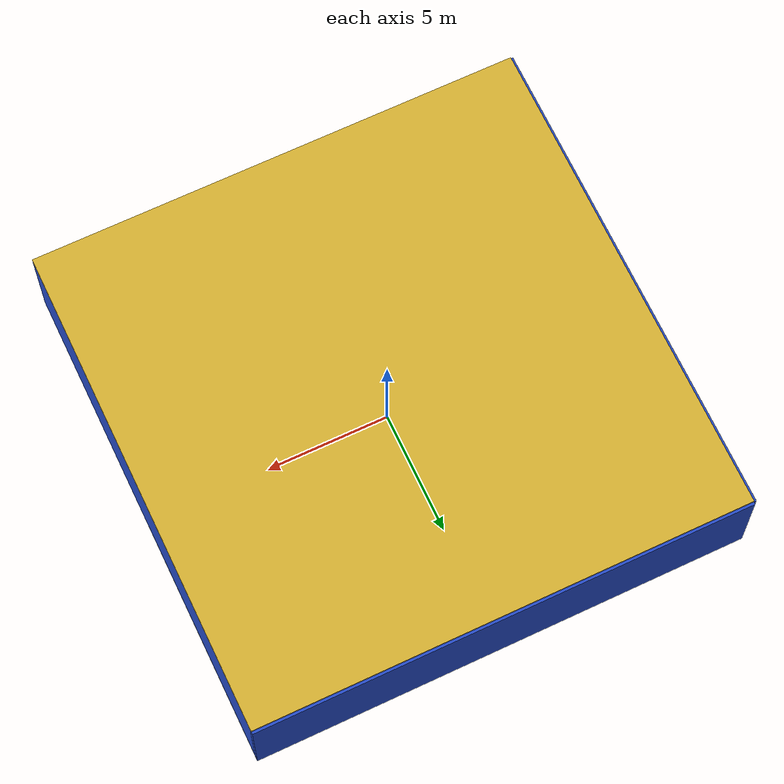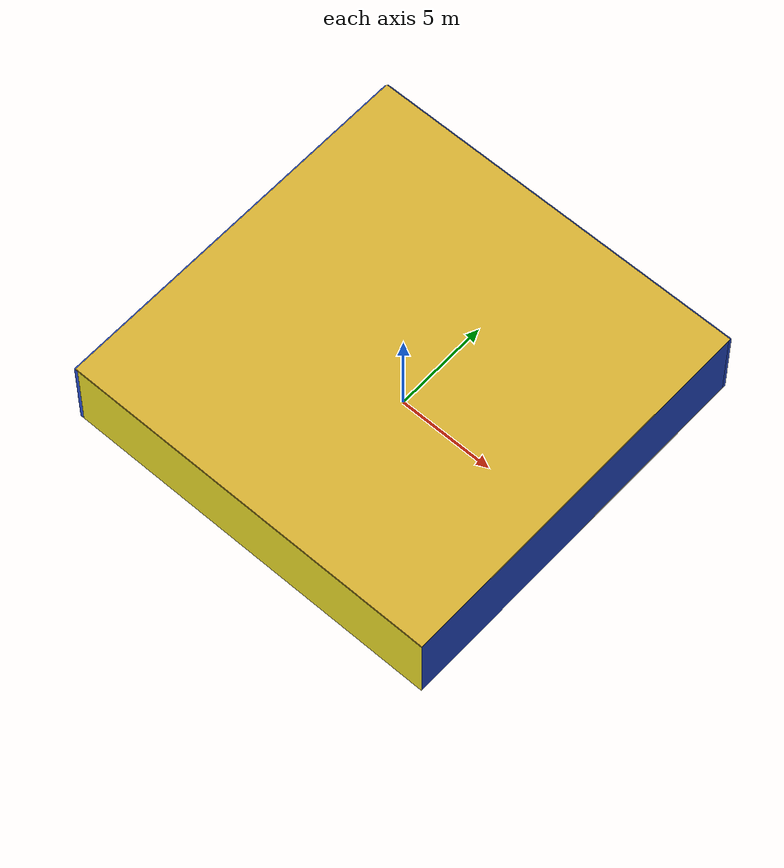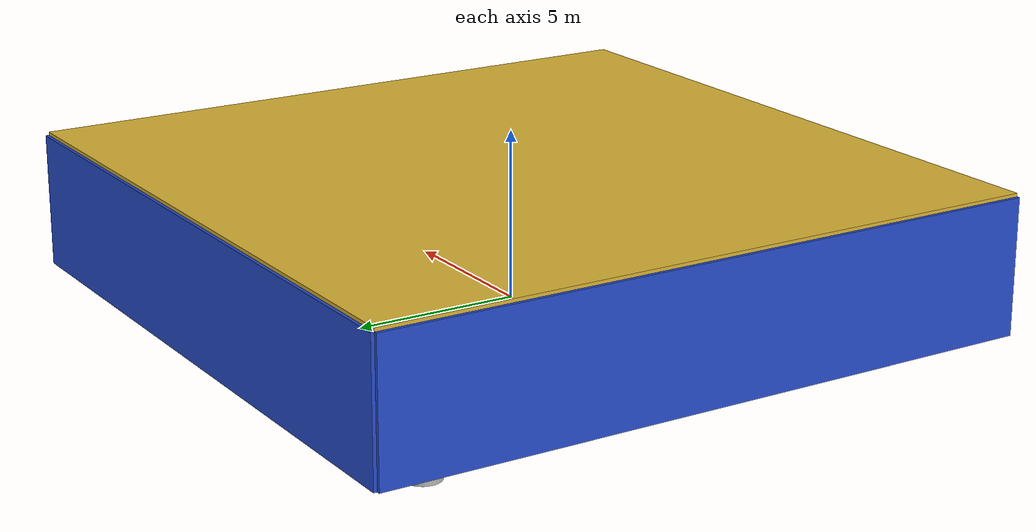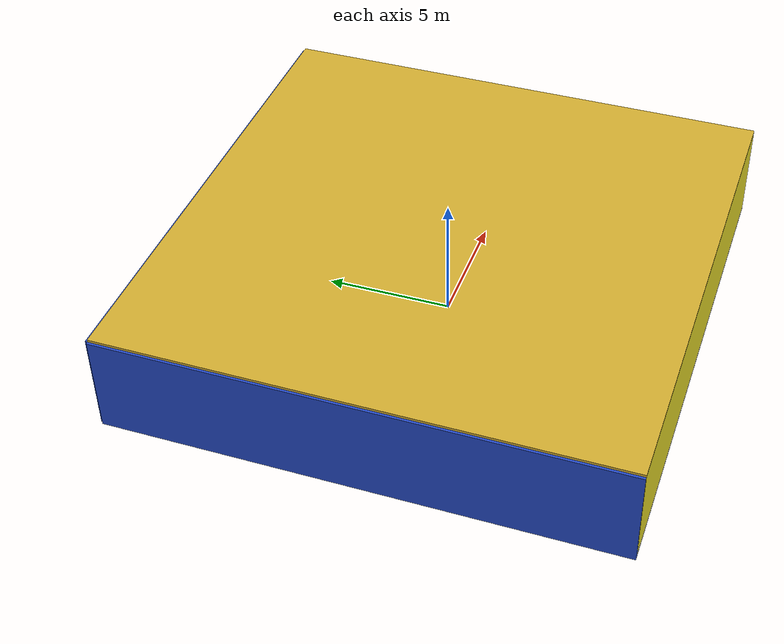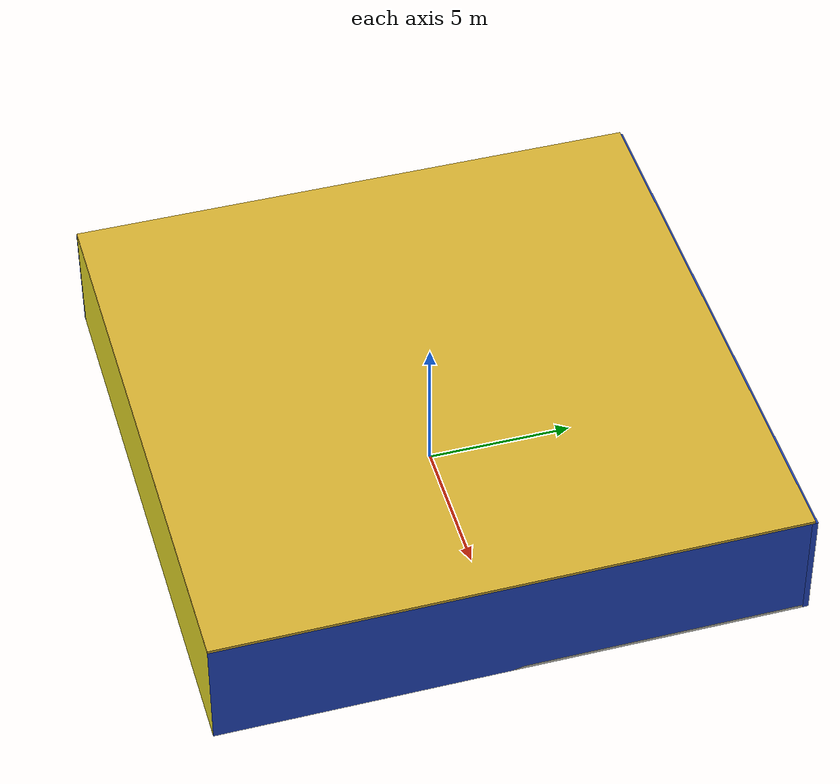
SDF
<sdf version="1.4">
 <world name="default">
  <physics type="ode">
   <max_step_size>0.001</max_step_size>
   <real_time_factor>1</real_time_factor>
   <real_time_update_rate>1000</real_time_update_rate>
   <gravity>0 0 -9.8</gravity>
  </physics>
  <scene><ambient>0.4 0.4 0.4 1</ambient><background>0.7 0.7 0.7 1</background><shadows>1</shadows></scene>
  <model name="Surrounding">
   <static>1</static>
   <link name="Ceiling">
    <collision name="Ceiling_Collision"><geometry><box><size>20 20 0.1</size></box></geometry></collision>
    <visual name="Ceiling_Visual">
     <geometry><box><size>20 20 0.1</size></box></geometry>
     <material>
      <script><uri>file://media/materials/scripts/gazebo.material</uri><name>Gazebo/Gold</name></script>
     </material>
    </visual>
    <pose>0 0 4.05 0 0 0</pose>
   </link>
   <link name="Wall_South">
    <collision name="Wall_South_Collision">
     <geometry><box><size>20 0 4</size></box></geometry>
     <pose>0 0 2 0 -0 0</pose>
    </collision>
    <visual name="Wall_South_Visual">
     <pose>0 0 2 0 -0 0</pose>
     <geometry><box><size>20 0 4</size></box></geometry>
     <material>
      <script><uri>file://media/materials/scripts/gazebo.material</uri><name>Gazebo/YellowGlow</name></script>
     </material>
    </visual>
    <velocity_decay><linear>0</linear><angular>0</angular></velocity_decay>
    <pose>0 -10 0 0 -0 0</pose>
   </link>
   <link name="Wall_East">
    <collision name="Wall_21_Collision">
     <geometry><box><size>20 0 4</size></box></geometry>
     <pose>0 0 2 0 -0 0</pose>
    </collision>
    <visual name="Wall_21_Visual">
     <pose>0 0 2 0 -0 0</pose>
     <geometry><box><size>20 0 4</size></box></geometry>
     <material>
      <script><uri>file://media/materials/scripts/gazebo.material</uri><name>Gazebo/BlueGlow</name></script>
     </material>
    </visual>
    <velocity_decay><linear>0</linear><angular>0</angular></velocity_decay>
    <pose>10 0 0 0 -0 1.5708</pose>
   </link>
   <link name="Wall_North">
    <collision name="Wall_22_Collision">
     <geometry><box><size>20 0.2 4</size></box></geometry>
     <pose>0 0 2 0 -0 0</pose>
    </collision>
    <visual name="Wall_22_Visual">
     <pose>0 0 2 0 -0 0</pose>
     <geometry><box><size>20 0.2 4</size></box></geometry>
     <material>
      <script><uri>file://media/materials/scripts/gazebo.material</uri><name>Gazebo/Blue</name></script>
     </material>
    </visual>
    <velocity_decay><linear>0</linear><angular>0</angular></velocity_decay>
    <pose>0 10 0 0 -0 0</pose>
   </link>
   <link name="Wall_West">
    <collision name="Wall_23_Collision">
     <geometry><box><size>20 0.2 4</size></box></geometry>
     <pose>0 0 2 0 -0 0</pose>
    </collision>
    <visual name="Wall_23_Visual">
     <pose>0 0 2 0 -0 0</pose>
     <geometry><box><size>20 0.2 4</size></box></geometry>
     <material>
      <script><uri>file://media/materials/scripts/gazebo.material</uri><name>Gazebo/BlueGlow</name></script>
     </material>
    </visual>
    <velocity_decay><linear>0</linear><angular>0</angular></velocity_decay>
    <pose>-10 0 0 0 0 -1.5708</pose>
   </link>
   <link name="Ground_link">
    <collision name="collision">
     <pose>0 0 .05 0 -0 0</pose>
     <geometry><box><size>20 20 0.1</size></box></geometry>
    </collision>
    <visual name="visual">
     <pose>0 0 .05 0 -0 0</pose>
     <geometry><box><size>20 20 0.1</size></box></geometry>
     <material>
      <script><uri>file://media/materials/scripts/gazebo.material</uri><name>Gazebo/PaintedWall</name></script>
     </material>
    </visual>
   </link>
   <static>1</static>
  </model>
  <spherical_coordinates>
   <surface_model>EARTH_WGS84</surface_model>
   <latitude_deg>0</latitude_deg>
   <longitude_deg>0</longitude_deg>
   <elevation>0</elevation>
   <heading_deg>0</heading_deg>
  </spherical_coordinates>
  <light name="lightball_0" type="diffuse">
   <diffuse>0.8 0.8 0.8 1</diffuse>
   <specular>0.2 0.2 0.2 1</specular>
   <attenuation>
    <range>100</range>
    <constant>0.7</constant>
    <linear>0.01</linear>
    <quadratic>0.001</quadratic>
   </attenuation>
   <direction>-0.5 0.1 -0.9</direction>
   <pose>2.70264790607 9.51485504829 0.994703129817 0 0 0</pose>
  </light>
  <light name="lightball_1" type="diffuse">
   <diffuse>0.8 0.8 0.8 1</diffuse>
   <specular>0.2 0.2 0.2 1</specular>
   <attenuation>
    <range>100</range>
    <constant>0.7</constant>
    <linear>0.01</linear>
    <quadratic>0.001</quadratic>
   </attenuation>
   <direction>-0.5 0.1 -0.9</direction>
   <pose>-3.220304867 9.13447244274 2.17900891843 0 0 0</pose>
  </light>
  <light name="lightball_2" type="diffuse">
   <diffuse>0.8 0.8 0.8 1</diffuse>
   <specular>0.2 0.2 0.2 1</specular>
   <attenuation>
    <range>100</range>
    <constant>0.7</constant>
    <linear>0.01</linear>
    <quadratic>0.001</quadratic>
   </attenuation>
   <direction>-0.5 0.1 -0.9</direction>
   <pose>-9.33310455203 -0.268937735536 3.21967978874 0 0 0</pose>
  </light>
  <light name="lightball_3" type="diffuse">
   <diffuse>0.8 0.8 0.8 1</diffuse>
   <specular>0.2 0.2 0.2 1</specular>
   <attenuation>
    <range>100</range>
    <constant>0.7</constant>
    <linear>0.01</linear>
    <quadratic>0.001</quadratic>
   </attenuation>
   <direction>-0.5 0.1 -0.9</direction>
   <pose>0.844000487178 0.96278916668 1.03039490941 0 0 0</pose>
  </light>
  <light name="lightball_4" type="diffuse">
   <diffuse>0.8 0.8 0.8 1</diffuse>
   <specular>0.2 0.2 0.2 1</specular>
   <attenuation>
    <range>100</range>
    <constant>0.7</constant>
    <linear>0.01</linear>
    <quadratic>0.001</quadratic>
   </attenuation>
   <direction>-0.5 0.1 -0.9</direction>
   <pose>5.92724283718 -9.52744247057 1.63654835631 0 0 0</pose>
  </light>
  <light name="lightball_5" type="diffuse">
   <diffuse>0.8 0.8 0.8 1</diffuse>
   <specular>0.2 0.2 0.2 1</specular>
   <attenuation>
    <range>100</range>
    <constant>0.7</constant>
    <linear>0.01</linear>
    <quadratic>0.001</quadratic>
   </attenuation>
   <direction>-0.5 0.1 -0.9</direction>
   <pose>8.1670160642 -3.83062352707 3.06692477403 0 0 0</pose>
  </light>
  <light name="lightball_6" type="diffuse">
   <diffuse>0.8 0.8 0.8 1</diffuse>
   <specular>0.2 0.2 0.2 1</specular>
   <attenuation>
    <range>100</range>
    <constant>0.7</constant>
    <linear>0.01</linear>
    <quadratic>0.001</quadratic>
   </attenuation>
   <direction>-0.5 0.1 -0.9</direction>
   <pose>4.20076706292 4.47449594182 0.678966008051 0 0 0</pose>
  </light>
  <light name="lightball_7" type="diffuse">
   <diffuse>0.8 0.8 0.8 1</diffuse>
   <specular>0.2 0.2 0.2 1</specular>
   <attenuation>
    <range>100</range>
    <constant>0.7</constant>
    <linear>0.01</linear>
    <quadratic>0.001</quadratic>
   </attenuation>
   <direction>-0.5 0.1 -0.9</direction>
   <pose>8.25447508694 9.18864910112 1.53161457979 0 0 0</pose>
  </light>
  <light name="lightball_8" type="diffuse">
   <diffuse>0.8 0.8 0.8 1</diffuse>
   <specular>0.2 0.2 0.2 1</specular>
   <attenuation>
    <range>100</range>
    <constant>0.7</constant>
    <linear>0.01</linear>
    <quadratic>0.001</quadratic>
   </attenuation>
   <direction>-0.5 0.1 -0.9</direction>
   <pose>7.73197974726 2.3645044338 1.97961484905 0 0 0</pose>
  </light>
  <include>
   <uri>model://textured_shapes</uri>
   <pose>-8.05776485294 6.87418665848 0 0 0 0.591097141407</pose>
  </include>
  <include>
   <uri>model://construction_cone</uri>
   <pose>-5.06618303339 -8.16202519047 0 0 0 1.27108289983</pose>
  </include>
  <include><uri>model://cabinet</uri><pose>-4.21381816656 -3.70532026828 0 0 0 2.98710305909</pose></include>
  <include><uri>model://cabinet</uri><pose>-5.18317167707 8.19873425511 0 0 0 2.3822801643</pose></include>
  <include>
   <uri>model://robocup_3Dsim_goal</uri>
   <pose>-1.71354886863 1.64396076583 0 0 0 0.290219754641</pose>
  </include>
  <include><uri>model://cabinet</uri><pose>1.95528161081 7.91912720919 0 0 0 1.83063400515</pose></include>
  <include><uri>model://table</uri><pose>4.39814557157 -1.54878349873 0 0 0 0.835149726529</pose></include>
 </world>
</sdf>

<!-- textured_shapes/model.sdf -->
<sdf version="1.6">
  <model name="textured_shapes">
    <pose>0 0 0.5 0 0 0</pose>
    <link name="box">
      <pose>0 -1.5 0 0 0 0</pose>
      <collision name="collision">
        <geometry>
          <box>
            <size>1 1 1</size>
          </box>
        </geometry>
      </collision>
      <visual name="visual">
        <geometry>
          <box>
            <size>1 1 1</size>
          </box>
        </geometry>
        <material>
          <script>
            <uri>model://../model_source/models/textured_shapes/materials/scripts</uri>
            <uri>model://../model_source/models/textured_shapes/materials/textures</uri>
            <name>TexturedShape/Squares</name>
          </script>
        </material>
      </visual>
    </link>
    <link name="sphere">
      <collision name="collision">
        <geometry>
          <sphere>
            <radius>0.5</radius>
          </sphere>
        </geometry>
      </collision>
      <visual name="visual">
        <geometry>
          <sphere>
            <radius>0.5</radius>
          </sphere>
        </geometry>
        <material>
          <script>
            <uri>model://../model_source/models/textured_shapes/materials/scripts</uri>
            <uri>model://../model_source/models/textured_shapes/materials/textures</uri>
            <name>TexturedShape/Squares</name>
          </script>
        </material>
      </visual>
    </link>
    <link name="cylinder">
      <pose>0 1.5 0 0 0 0</pose>
      <collision name="collision">
        <geometry>
          <cylinder>
            <radius>0.5</radius>
            <length>1</length>
          </cylinder>
        </geometry>
      </collision>
      <visual name="visual">
        <geometry>
          <cylinder>
            <radius>0.5</radius>
            <length>1</length>
          </cylinder>
        </geometry>
        <material>
          <script>
            <uri>model://../model_source/models/textured_shapes/materials/scripts</uri>
            <uri>model://../model_source/models/textured_shapes/materials/textures</uri>
            <name>TexturedShape/Squares</name>
          </script>
        </material>
      </visual>
    </link>
  </model>
</sdf>

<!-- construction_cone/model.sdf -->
<sdf version="1.5">
  <model name="Construction Cone">
    <link name="link">
      <collision name="collision">
        <geometry>
          <mesh>
            <scale>10 10 10</scale>
            <uri>file://isr-testbed/construction_cone/meshes/construction_cone.dae</uri>
          </mesh>
        </geometry>
      </collision>
      <visual name="visual">
        <geometry>
          <mesh>
            <scale>10 10 10</scale>
            <uri>file://isr-testbed/construction_cone/meshes/construction_cone.dae</uri>
          </mesh>
        </geometry>
      </visual>
    </link>
  </model>
</sdf>

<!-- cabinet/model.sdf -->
<sdf version="1.5">
  <model name="cabinet">
    <static>true</static>
    <link name="cabinet_bottom_plate">
      <inertial>
        <pose>0 0 -1 0 0 0</pose>
        <inertia>
          <ixx>2.050000</ixx>
          <ixy>0</ixy>
          <ixz>0</ixz>
          <iyy>2.050000</iyy>
          <iyz>0</iyz>
          <izz>2.050000</izz>
        </inertia>
        <mass>25.000000</mass>
      </inertial>
      <collision name="cabinet_bottom_plate_geom">
        <pose>0 0 0.010000 0 0 0</pose>
        <geometry>
          <box>
            <size>0.450000 0.450000 0.020000</size>
          </box>
        </geometry>
      </collision>
      <visual name="cabinet_bottom_plate_geom_visual">
        <pose>0 0 0.010000 0 0 0</pose>
        <geometry>
          <box>
            <size>0.450000 0.450000 0.020000</size>
          </box>
        </geometry>
        <material>
          <script>
            <uri>model://media/materials/scripts/gazebo.material</uri>
            <name>Gazebo/Wood</name>
          </script>
        </material>
      </visual>
      <collision name="cabinet_bottom_plate_geom_cabinet_back_plate">
        <pose>0.235000 0 0.510000 0 0 0</pose>
        <geometry>
          <box>
            <size>0.020000 0.450000 1.020000</size>
          </box>
        </geometry>
      </collision>
      <visual name="cabinet_bottom_plate_geom_cabinet_back_plate_visual">
        <pose>0.235000 0 0.510000 0 0 0</pose>
        <geometry>
          <box>
            <size>0.020000 0.450000 1.020000</size>
          </box>
        </geometry>
        <material>
          <script>
            <uri>model://media/materials/scripts/gazebo.material</uri>
            <name>Gazebo/Wood</name>
          </script>
        </material>
      </visual>
      <collision name="cabinet_bottom_plate_geom_cabinet_left_plate">
        <pose>0 0.235000 0.510000 0 0 0</pose>
        <geometry>
          <box>
            <size>0.450000 0.020000 1.020000</size>
          </box>
        </geometry>
      </collision>
      <visual name="cabinet_bottom_plate_geom_cabinet_left_plate_visual">
        <pose>0 0.235000 0.510000 0 0 0</pose>
        <geometry>
          <box>
            <size>0.450000 0.020000 1.020000</size>
          </box>
        </geometry>
        <material>
          <script>
            <uri>model://media/materials/scripts/gazebo.material</uri>
            <name>Gazebo/Wood</name>
          </script>
        </material>
      </visual>
      <collision name="cabinet_bottom_plate_geom_cabinet_middle_plate">
        <pose>0 0 0.510000 0 0 0</pose>
        <geometry>
          <box>
            <size>0.450000 0.450000 0.020000</size>
          </box>
        </geometry>
      </collision>
      <visual name="cabinet_bottom_plate_geom_cabinet_middle_plate_visual">
        <pose>0 0 0.510000 0 0 0</pose>
        <geometry>
          <box>
            <size>0.450000 0.450000 0.020000</size>
          </box>
        </geometry>
        <material>
          <script>
            <uri>model://media/materials/scripts/gazebo.material</uri>
            <name>Gazebo/Wood</name>
          </script>
        </material>
      </visual>
      <collision name="cabinet_bottom_plate_geom_cabinet_right_plate">
        <pose>0 -0.235000 0.510000 0 0 0</pose>
        <geometry>
          <box>
            <size>0.450000 0.020000 1.020000</size>
          </box>
        </geometry>
      </collision>
      <visual name="cabinet_bottom_plate_geom_cabinet_right_plate_visual">
        <pose>0 -0.235000 0.510000 0 0 0</pose>
        <geometry>
          <box>
            <size>0.450000 0.020000 1.020000</size>
          </box>
        </geometry>
        <material>
          <script>
            <uri>model://media/materials/scripts/gazebo.material</uri>
            <name>Gazebo/Wood</name>
          </script>
        </material>
      </visual>
      <collision name="cabinet_bottom_plate_geom_cabinet_top_plate">
        <pose>0 0 1.010000 0 0 0</pose>
        <geometry>
          <box>
            <size>0.450000 0.450000 0.020000</size>
          </box>
        </geometry>
      </collision>
      <visual name="cabinet_bottom_plate_geom_cabinet_top_plate_visual">
        <pose>0 0 1.010000 0 0 0</pose>
        <geometry>
          <box>
            <size>0.450000 0.450000 0.020000</size>
          </box>
        </geometry>
        <material>
          <script>
            <uri>model://media/materials/scripts/gazebo.material</uri>
            <name>Gazebo/Wood</name>
          </script>
        </material>
      </visual>
    </link>
  </model>
</sdf>

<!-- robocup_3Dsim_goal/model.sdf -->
<sdf version="1.5">
  <model name="robocup_3d_goal">
    <static>true</static>
    <link name="left_post">
      <pose>0 1.05 0.45 0 0 0</pose>
      <collision name="collision">
        <geometry>
          <cylinder>
            <radius>0.05</radius>
            <length>0.9</length>
          </cylinder>
        </geometry>
      </collision>
      <visual name="visual">
        <geometry>
          <cylinder>
            <radius>0.05</radius>
            <length>0.9</length>
          </cylinder>
        </geometry>
        <material>
          <script>
            <uri>file://media/materials/scripts/gazebo.material</uri>
            <name>Gazebo/ZincYellow</name>
          </script>
        </material>
      </visual>
    </link>
    <link name="left_support_horiz_lower">
      <pose>0.30 1.05 0.01 0 0 0</pose>
      <collision name="collision">
        <geometry>
          <box>
            <size>0.50 0.02 0.02</size>
          </box>
        </geometry>
      </collision>
      <visual name="visual">
        <geometry>
          <box>
            <size>0.50 0.02 0.02</size>
          </box>
        </geometry>
        <material>
          <script>
            <uri>file://media/materials/scripts/gazebo.material</uri>
            <name>Gazebo/White</name>
          </script>
        </material>
      </visual>
    </link>
    <link name="left_support_horiz_upper">
      <pose>0.30 1.05 0.79 0 0 0</pose>
      <collision name="collision">
        <geometry>
          <box>
            <size>0.50 0.02 0.02</size>
          </box>
        </geometry>
      </collision>
      <visual name="visual">
        <geometry>
          <box>
            <size>0.50 0.02 0.02</size>
          </box>
        </geometry>
        <material>
          <script>
            <uri>file://media/materials/scripts/gazebo.material</uri>
            <name>Gazebo/White</name>
          </script>
        </material>
      </visual>
    </link>
    <link name="left_support_vertical">
      <pose>0.56 1.05 0.4 0 1.5708 0</pose>
      <collision name="collision">
        <geometry>
          <box>
            <size>0.80 0.02 0.02</size>
          </box>
        </geometry>
      </collision>
      <visual name="visual">
        <geometry>
          <box>
            <size>0.80 0.02 0.02</size>
          </box>
        </geometry>
        <material>
          <script>
            <uri>file://media/materials/scripts/gazebo.material</uri>
            <name>Gazebo/White</name>
          </script>
        </material>
      </visual>
    </link>
    <link name="right_support_horiz_lower">
      <pose>0.30 -1.05 0.01 0 0 0</pose>
      <collision name="collision">
        <geometry>
          <box>
            <size>0.50 0.02 0.02</size>
          </box>
        </geometry>
      </collision>
      <visual name="visual">
        <geometry>
          <box>
            <size>0.50 0.02 0.02</size>
          </box>
        </geometry>
        <material>
          <script>
            <uri>file://media/materials/scripts/gazebo.material</uri>
            <name>Gazebo/White</name>
          </script>
        </material>
      </visual>
    </link>
    <link name="right_support_horiz_upper">
      <pose>0.30 -1.05 0.79 0 0 0</pose>
      <collision name="collision">
        <geometry>
          <box>
            <size>0.50 0.02 0.02</size>
          </box>
        </geometry>
      </collision>
      <visual name="visual">
        <geometry>
          <box>
            <size>0.50 0.02 0.02</size>
          </box>
        </geometry>
        <material>
          <script>
            <uri>file://media/materials/scripts/gazebo.material</uri>
            <name>Gazebo/White</name>
          </script>
        </material>
      </visual>
    </link>
    <link name="right_support_vertical">
      <pose>0.56 -1.05 0.4 0 1.5708 0</pose>
      <collision name="collision">
        <geometry>
          <box>
            <size>0.80 0.02 0.02</size>
          </box>
        </geometry>
      </collision>
      <visual name="visual">
        <geometry>
          <box>
            <size>0.80 0.02 0.02</size>
          </box>
        </geometry>
        <material>
          <script>
            <uri>file://media/materials/scripts/gazebo.material</uri>
            <name>Gazebo/White</name>
          </script>
        </material>
      </visual>
    </link>
    <link name="center_support_horiz_lower">
      <pose>0.56 0 0.01 0 1.5708 0</pose>
      <collision name="collision">
        <geometry>
          <box>
            <size>0.02 2.08 0.02</size>
          </box>
        </geometry>
      </collision>
      <visual name="visual">
        <geometry>
          <box>
            <size>0.02 2.08 0.02</size>
          </box>
        </geometry>
        <material>
          <script>
            <uri>file://media/materials/scripts/gazebo.material</uri>
            <name>Gazebo/White</name>
          </script>
        </material>
      </visual>
    </link>
    <link name="center_support_horiz_upper">
      <pose>0.56 0 0.79 0 1.5708 0</pose>
      <collision name="collision">
        <geometry>
          <box>
            <size>0.02 2.08 0.02</size>
          </box>
        </geometry>
      </collision>
      <visual name="visual">
        <geometry>
          <box>
            <size>0.02 2.08 0.02</size>
          </box>
        </geometry>
        <material>
          <script>
            <uri>file://media/materials/scripts/gazebo.material</uri>
            <name>Gazebo/White</name>
          </script>
        </material>
      </visual>
    </link>
    <link name="right_post">
      <pose>0 -1.05 0.45 0 0 0</pose>
      <collision name="collision">
        <geometry>
          <cylinder>
            <radius>0.05</radius>
            <length>0.9</length>
          </cylinder>
        </geometry>
      </collision>
      <visual name="visual">
        <geometry>
          <cylinder>
            <radius>0.05</radius>
            <length>0.9</length>
          </cylinder>
        </geometry>
        <material>
          <script>
            <uri>file://media/materials/scripts/gazebo.material</uri>
            <name>Gazebo/ZincYellow</name>
          </script>
        </material>
      </visual>
    </link>
    <link name="crossbar">
      <pose>0 0 0.85 1.57 1.57 0</pose>
      <collision name="collision">
        <geometry>
          <cylinder>
            <radius>0.05</radius>
            <length>2.0</length>
          </cylinder>
        </geometry>
      </collision>
      <visual name="visual">
        <geometry>
          <cylinder>
            <radius>0.05</radius>
            <length>2.0</length>
          </cylinder>
        </geometry>
        <material>
          <script>
            <uri>file://media/materials/scripts/gazebo.material</uri>
            <name>Gazebo/ZincYellow</name>
          </script>
        </material>
      </visual>
    </link>
    <link name="center_net">
      <pose>0.56 0 0.40 0 0 0</pose>
      <collision name="collision">
        <geometry>
          <box>
            <size>0.01 2.1 0.80</size>
          </box>
        </geometry>
      </collision>
      <visual name="visual">
        <geometry>
          <box>
            <size>0.01 2.1 0.80</size>
          </box>
        </geometry>
        <material>
          <script>
            <uri>model://../model_source/models/robocup09_spl_field/materials/scripts/</uri>
            <uri>model://../model_source/models/robocup09_spl_field/materials/textures/</uri>
            <name>RoboCup/Net</name>
          </script>
        </material>
      </visual>
    </link>
    <link name="left_net">
      <pose>0.30 1.05 0.40 0 0 0</pose>
      <collision name="collision">
        <geometry>
          <box>
            <size>0.50 0.01 0.76</size>
          </box>
        </geometry>
      </collision>
      <visual name="visual">
        <geometry>
          <box>
            <size>0.50 0.01 0.76</size>
          </box>
        </geometry>
        <material>
          <script>
            <uri>model://../model_source/models/robocup09_spl_field/materials/scripts/</uri>
            <uri>model://../model_source/models/robocup09_spl_field/materials/textures/</uri>
            <name>RoboCup/Net</name>
          </script>
        </material>
      </visual>
    </link>
    <link name="right_net">
      <pose>0.30 -1.05 0.40 0 0 0</pose>
      <collision name="collision">
        <geometry>
          <box>
            <size>0.50 0.01 0.76</size>
          </box>
        </geometry>
      </collision>
      <visual name="visual">
        <geometry>
          <box>
            <size>0.50 0.01 0.76</size>
          </box>
        </geometry>
        <material>
          <script>
            <uri>model://../model_source/models/robocup09_spl_field/materials/scripts/</uri>
            <uri>model://../model_source/models/robocup09_spl_field/materials/textures/</uri>
            <name>RoboCup/Net</name>
          </script>
        </material>
      </visual>
    </link>
  </model>
</sdf>

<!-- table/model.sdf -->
<sdf version="1.5">
  <model name="table">
    <static>true</static>
    <link name="link">
      <collision name="surface">
        <pose>0 0 1.0 0 0 0</pose>
        <geometry>
          <box>
            <size>1.5 0.8 0.03</size>
          </box>
        </geometry>
        <surface>
          <friction>
            <ode>
              <mu>0.6</mu>
              <mu2>0.6</mu2>
            </ode>
          </friction>
        </surface>
      </collision>
      <visual name="visual1">
        <pose>0 0 1.0 0 0 0</pose>
        <geometry>
          <box>
            <size>1.5 0.8 0.03</size>
          </box>
        </geometry>
        <material>
          <script>
            <uri>model://media/materials/scripts/gazebo.material</uri>
            <name>Gazebo/Wood</name>
          </script>
        </material>
      </visual>
      <collision name="front_left_leg">
        <pose>0.68 0.38 0.5 0 0 0</pose>
        <geometry>
          <cylinder>
            <radius>0.02</radius>
            <length>1.0</length>
          </cylinder>
        </geometry>
      </collision>
      <visual name="front_left_leg">
        <pose>0.68 0.38 0.5 0 0 0</pose>
        <geometry>
          <cylinder>
            <radius>0.02</radius>
            <length>1.0</length>
          </cylinder>
        </geometry>
        <material>
          <script>
            <uri>model://media/materials/scripts/gazebo.material</uri>
            <name>Gazebo/Grey</name>
          </script>
        </material>
      </visual>
      <collision name="front_right_leg">
        <pose>0.68 -0.38 0.5 0 0 0</pose>
        <geometry>
          <cylinder>
            <radius>0.02</radius>
            <length>1.0</length>
          </cylinder>
        </geometry>
      </collision>
      <visual name="front_right_leg">
        <pose>0.68 -0.38 0.5 0 0 0</pose>
        <geometry>
          <cylinder>
            <radius>0.02</radius>
            <length>1.0</length>
          </cylinder>
        </geometry>
        <material>
          <script>
            <uri>model://media/materials/scripts/gazebo.material</uri>
            <name>Gazebo/Grey</name>
          </script>
        </material>
      </visual>
      <collision name="back_right_leg">
        <pose>-0.68 -0.38 0.5 0 0 0</pose>
        <geometry>
          <cylinder>
            <radius>0.02</radius>
            <length>1.0</length>
          </cylinder>
        </geometry>
      </collision>
      <visual name="back_right_leg">
        <pose>-0.68 -0.38 0.5 0 0 0</pose>
        <geometry>
          <cylinder>
            <radius>0.02</radius>
            <length>1.0</length>
          </cylinder>
        </geometry>
        <material>
          <script>
            <uri>model://media/materials/scripts/gazebo.material</uri>
            <name>Gazebo/Grey</name>
          </script>
        </material>
      </visual>
      <collision name="back_left_leg">
        <pose>-0.68 0.38 0.5 0 0 0</pose>
        <geometry>
          <cylinder>
            <radius>0.02</radius>
            <length>1.0</length>
          </cylinder>
        </geometry>
      </collision>
      <visual name="back_left_leg">
        <pose>-0.68 0.38 0.5 0 0 0</pose>
        <geometry>
          <cylinder>
            <radius>0.02</radius>
            <length>1.0</length>
          </cylinder>
        </geometry>
        <material>
          <script>
            <uri>model://media/materials/scripts/gazebo.material</uri>
            <name>Gazebo/Grey</name>
          </script>
        </material>
      </visual>
    </link>
  </model>
</sdf>
